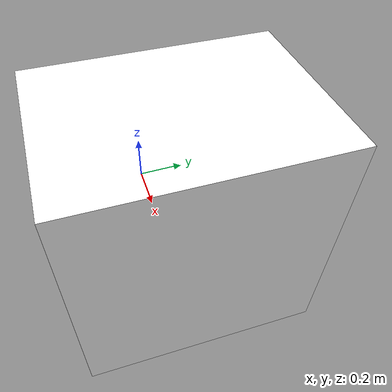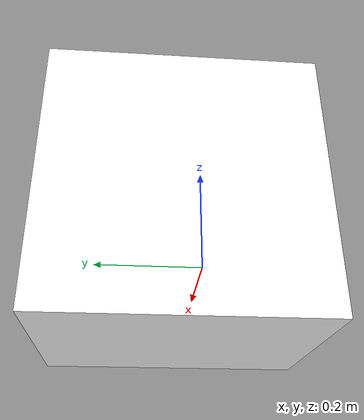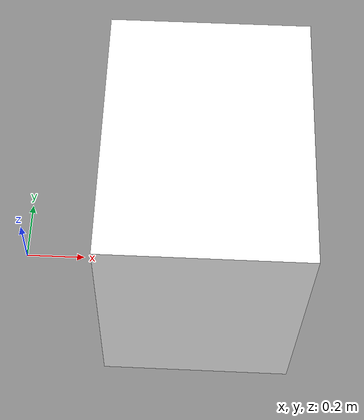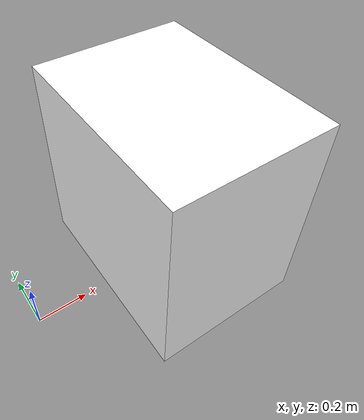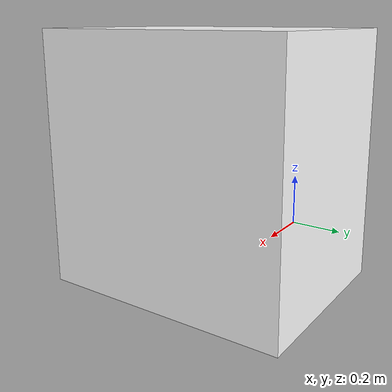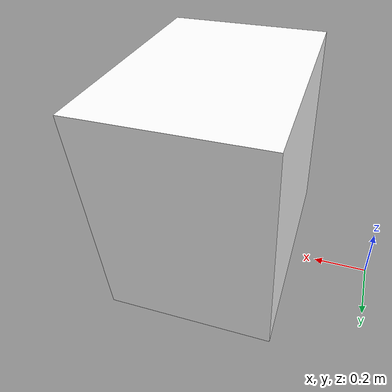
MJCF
<mujoco model="box">
    <compiler angle="radian" coordinate="local" />

    <default>
        <geom contype="1" conaffinity="1" friction="0.8 0.8 0.8" />
    </default>

    <asset>
        <material name="white" rgba="1 1 1 1" />
        <material name="red" rgba="1 0 0 1" />
    </asset>

    <worldbody>
        <body name="box" pos="0.3 0 0" quat="0 0 0 1">
            <freejoint name="box_root"/>
            <geom type="box" size="0.3 0.4 0.4" pos="-0.3 0 0.4" material="white" mass="8" friction="0.5"/>

        </body>
    </worldbody>

    <sensor>
        <framepos name="box_pos" objtype="xbody" objname="box" />
        <framequat name="box_quat" objtype="xbody" objname="box" />
    </sensor>
</mujoco>
